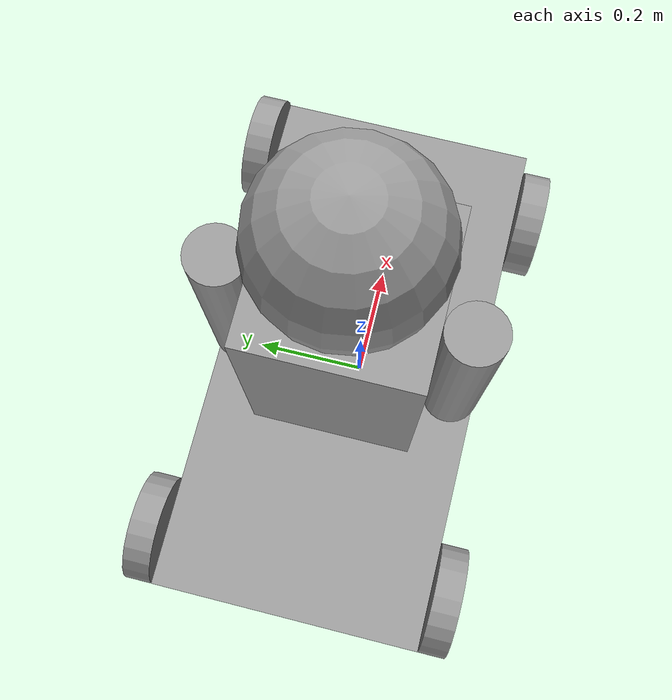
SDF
<?xml version='1.0'?>
<sdf version='1.6'>
  <model name='HumanoidRobot'>
    <link name='link_1'>
      <inertial>
        <mass>1</mass>
        <inertia>
          <ixx>0.166667</ixx>
          <ixy>0</ixy>
          <ixz>0</ixz>
          <iyy>0.166667</iyy>
          <iyz>0</iyz>
          <izz>0.166667</izz>
        </inertia>
        <pose frame=''>0 0 0 0 -0 0</pose>
      </inertial>
      <pose frame=''>0.002333 0.021111 0.035546 0 -0 0</pose>
      <gravity>1</gravity>
      <self_collide>0</self_collide>
      <kinematic>0</kinematic>
      <enable_wind>0</enable_wind>
      <visual name='visual'>
        <pose frame=''>0 0 0 0 -0 0</pose>
        <geometry>
          <box>
            <size>1 0.5 0.02</size>
          </box>
        </geometry>
        <material>
          <lighting>1</lighting>
          <script>
            <uri>file://media/materials/scripts/gazebo.material</uri>
            <name>Gazebo/Grey</name>
          </script>
          <shader type='vertex'>
            <normal_map>__default__</normal_map>
          </shader>
          <ambient>0.3 0.3 0.3 1</ambient>
          <diffuse>0.7 0.7 0.7 1</diffuse>
          <specular>0.01 0.01 0.01 1</specular>
          <emissive>0 0 0 1</emissive>
        </material>
        <transparency>0</transparency>
        <cast_shadows>1</cast_shadows>
      </visual>
      <collision name='collision'>
        <laser_retro>0</laser_retro>
        <max_contacts>10</max_contacts>
        <pose frame=''>0 0 0 0 -0 0</pose>
        <geometry>
          <box>
            <size>1 0.5 0.02</size>
          </box>
        </geometry>
        <surface>
          <friction>
            <ode>
              <mu>1</mu>
              <mu2>1</mu2>
              <fdir1>0 0 0</fdir1>
              <slip1>0</slip1>
              <slip2>0</slip2>
            </ode>
            <torsional>
              <coefficient>1</coefficient>
              <patch_radius>0</patch_radius>
              <surface_radius>0</surface_radius>
              <use_patch_radius>1</use_patch_radius>
              <ode>
                <slip>0</slip>
              </ode>
            </torsional>
          </friction>
          <bounce>
            <restitution_coefficient>0</restitution_coefficient>
            <threshold>1e+06</threshold>
          </bounce>
          <contact>
            <collide_without_contact>0</collide_without_contact>
            <collide_without_contact_bitmask>1</collide_without_contact_bitmask>
            <collide_bitmask>1</collide_bitmask>
            <ode>
              <soft_cfm>0</soft_cfm>
              <soft_erp>0.2</soft_erp>
              <kp>1e+13</kp>
              <kd>1</kd>
              <max_vel>0.01</max_vel>
              <min_depth>0</min_depth>
            </ode>
            <bullet>
              <split_impulse>1</split_impulse>
              <split_impulse_penetration_threshold>-0.01</split_impulse_penetration_threshold>
              <soft_cfm>0</soft_cfm>
              <soft_erp>0.2</soft_erp>
              <kp>1e+13</kp>
              <kd>1</kd>
            </bullet>
          </contact>
        </surface>
      </collision>
    </link>
    <link name='link_2'>
      <inertial>
        <mass>1</mass>
        <inertia>
          <ixx>0.145833</ixx>
          <ixy>0</ixy>
          <ixz>0</ixz>
          <iyy>0.145833</iyy>
          <iyz>0</iyz>
          <izz>0.125</izz>
        </inertia>
        <pose frame=''>0 0 0 0 -0 0</pose>
      </inertial>
      <pose frame=''>0.362333 -0.254 0.035434 1.57 -0 0</pose>
      <gravity>1</gravity>
      <self_collide>0</self_collide>
      <kinematic>0</kinematic>
      <enable_wind>0</enable_wind>
      <visual name='visual'>
        <pose frame=''>0 0 0 0 -0 0</pose>
        <geometry>
          <cylinder>
            <radius>0.1</radius>
            <length>0.05</length>
          </cylinder>
        </geometry>
        <material>
          <lighting>1</lighting>
          <script>
            <uri>file://media/materials/scripts/gazebo.material</uri>
            <name>Gazebo/Grey</name>
          </script>
          <shader type='vertex'>
            <normal_map>__default__</normal_map>
          </shader>
          <ambient>0.3 0.3 0.3 1</ambient>
          <diffuse>0.7 0.7 0.7 1</diffuse>
          <specular>0.01 0.01 0.01 1</specular>
          <emissive>0 0 0 1</emissive>
        </material>
        <transparency>0</transparency>
        <cast_shadows>1</cast_shadows>
      </visual>
      <collision name='collision'>
        <laser_retro>0</laser_retro>
        <max_contacts>10</max_contacts>
        <pose frame=''>0 0 0 0 -0 0</pose>
        <geometry>
          <cylinder>
            <radius>0.1</radius>
            <length>0.05</length>
          </cylinder>
        </geometry>
        <surface>
          <friction>
            <ode>
              <mu>1</mu>
              <mu2>1</mu2>
              <fdir1>0 0 0</fdir1>
              <slip1>0</slip1>
              <slip2>0</slip2>
            </ode>
            <torsional>
              <coefficient>1</coefficient>
              <patch_radius>0</patch_radius>
              <surface_radius>0</surface_radius>
              <use_patch_radius>1</use_patch_radius>
              <ode>
                <slip>0</slip>
              </ode>
            </torsional>
          </friction>
          <bounce>
            <restitution_coefficient>0</restitution_coefficient>
            <threshold>1e+06</threshold>
          </bounce>
          <contact>
            <collide_without_contact>0</collide_without_contact>
            <collide_without_contact_bitmask>1</collide_without_contact_bitmask>
            <collide_bitmask>1</collide_bitmask>
            <ode>
              <soft_cfm>0</soft_cfm>
              <soft_erp>0.2</soft_erp>
              <kp>1e+13</kp>
              <kd>1</kd>
              <max_vel>0.01</max_vel>
              <min_depth>0</min_depth>
            </ode>
            <bullet>
              <split_impulse>1</split_impulse>
              <split_impulse_penetration_threshold>-0.01</split_impulse_penetration_threshold>
              <soft_cfm>0</soft_cfm>
              <soft_erp>0.2</soft_erp>
              <kp>1e+13</kp>
              <kd>1</kd>
            </bullet>
          </contact>
        </surface>
      </collision>
    </link>
    <link name='link_2_clone'>
      <inertial>
        <mass>1</mass>
        <inertia>
          <ixx>0.145833</ixx>
          <ixy>0</ixy>
          <ixz>0</ixz>
          <iyy>0.145833</iyy>
          <iyz>0</iyz>
          <izz>0.125</izz>
        </inertia>
        <pose frame=''>0 0 0 0 -0 0</pose>
      </inertial>
      <pose frame=''>-0.397667 -0.253969 0.035546 1.57 -0 0</pose>
      <gravity>1</gravity>
      <self_collide>0</self_collide>
      <kinematic>0</kinematic>
      <enable_wind>0</enable_wind>
      <visual name='visual'>
        <pose frame=''>0 0 0 0 -0 0</pose>
        <geometry>
          <cylinder>
            <radius>0.1</radius>
            <length>0.05</length>
          </cylinder>
        </geometry>
        <material>
          <lighting>1</lighting>
          <script>
            <uri>file://media/materials/scripts/gazebo.material</uri>
            <name>Gazebo/Grey</name>
          </script>
          <shader type='vertex'>
            <normal_map>__default__</normal_map>
          </shader>
          <ambient>0.3 0.3 0.3 1</ambient>
          <diffuse>0.7 0.7 0.7 1</diffuse>
          <specular>0.01 0.01 0.01 1</specular>
          <emissive>0 0 0 1</emissive>
        </material>
        <transparency>0</transparency>
        <cast_shadows>1</cast_shadows>
      </visual>
      <collision name='collision'>
        <laser_retro>0</laser_retro>
        <max_contacts>10</max_contacts>
        <pose frame=''>0 0 0 0 -0 0</pose>
        <geometry>
          <cylinder>
            <radius>0.1</radius>
            <length>0.05</length>
          </cylinder>
        </geometry>
        <surface>
          <friction>
            <ode>
              <mu>1</mu>
              <mu2>1</mu2>
              <fdir1>0 0 0</fdir1>
              <slip1>0</slip1>
              <slip2>0</slip2>
            </ode>
            <torsional>
              <coefficient>1</coefficient>
              <patch_radius>0</patch_radius>
              <surface_radius>0</surface_radius>
              <use_patch_radius>1</use_patch_radius>
              <ode>
                <slip>0</slip>
              </ode>
            </torsional>
          </friction>
          <bounce>
            <restitution_coefficient>0</restitution_coefficient>
            <threshold>1e+06</threshold>
          </bounce>
          <contact>
            <collide_without_contact>0</collide_without_contact>
            <collide_without_contact_bitmask>1</collide_without_contact_bitmask>
            <collide_bitmask>1</collide_bitmask>
            <ode>
              <soft_cfm>0</soft_cfm>
              <soft_erp>0.2</soft_erp>
              <kp>1e+13</kp>
              <kd>1</kd>
              <max_vel>0.01</max_vel>
              <min_depth>0</min_depth>
            </ode>
            <bullet>
              <split_impulse>1</split_impulse>
              <split_impulse_penetration_threshold>-0.01</split_impulse_penetration_threshold>
              <soft_cfm>0</soft_cfm>
              <soft_erp>0.2</soft_erp>
              <kp>1e+13</kp>
              <kd>1</kd>
            </bullet>
          </contact>
        </surface>
      </collision>
    </link>
    <link name='link_2_clone_0'>
      <inertial>
        <mass>1</mass>
        <inertia>
          <ixx>0.145833</ixx>
          <ixy>0</ixy>
          <ixz>0</ixz>
          <iyy>0.145833</iyy>
          <iyz>0</iyz>
          <izz>0.125</izz>
        </inertia>
        <pose frame=''>0 0 0 0 -0 0</pose>
      </inertial>
      <pose frame=''>-0.397667 0.296191 0.035546 1.57 -0 0</pose>
      <gravity>1</gravity>
      <self_collide>0</self_collide>
      <kinematic>0</kinematic>
      <enable_wind>0</enable_wind>
      <visual name='visual'>
        <pose frame=''>0 0 0 0 -0 0</pose>
        <geometry>
          <cylinder>
            <radius>0.1</radius>
            <length>0.05</length>
          </cylinder>
        </geometry>
        <material>
          <lighting>1</lighting>
          <script>
            <uri>file://media/materials/scripts/gazebo.material</uri>
            <name>Gazebo/Grey</name>
          </script>
          <shader type='vertex'>
            <normal_map>__default__</normal_map>
          </shader>
          <ambient>0.3 0.3 0.3 1</ambient>
          <diffuse>0.7 0.7 0.7 1</diffuse>
          <specular>0.01 0.01 0.01 1</specular>
          <emissive>0 0 0 1</emissive>
        </material>
        <transparency>0</transparency>
        <cast_shadows>1</cast_shadows>
      </visual>
      <collision name='collision'>
        <laser_retro>0</laser_retro>
        <max_contacts>10</max_contacts>
        <pose frame=''>0 0 0 0 -0 0</pose>
        <geometry>
          <cylinder>
            <radius>0.1</radius>
            <length>0.05</length>
          </cylinder>
        </geometry>
        <surface>
          <friction>
            <ode>
              <mu>1</mu>
              <mu2>1</mu2>
              <fdir1>0 0 0</fdir1>
              <slip1>0</slip1>
              <slip2>0</slip2>
            </ode>
            <torsional>
              <coefficient>1</coefficient>
              <patch_radius>0</patch_radius>
              <surface_radius>0</surface_radius>
              <use_patch_radius>1</use_patch_radius>
              <ode>
                <slip>0</slip>
              </ode>
            </torsional>
          </friction>
          <bounce>
            <restitution_coefficient>0</restitution_coefficient>
            <threshold>1e+06</threshold>
          </bounce>
          <contact>
            <collide_without_contact>0</collide_without_contact>
            <collide_without_contact_bitmask>1</collide_without_contact_bitmask>
            <collide_bitmask>1</collide_bitmask>
            <ode>
              <soft_cfm>0</soft_cfm>
              <soft_erp>0.2</soft_erp>
              <kp>1e+13</kp>
              <kd>1</kd>
              <max_vel>0.01</max_vel>
              <min_depth>0</min_depth>
            </ode>
            <bullet>
              <split_impulse>1</split_impulse>
              <split_impulse_penetration_threshold>-0.01</split_impulse_penetration_threshold>
              <soft_cfm>0</soft_cfm>
              <soft_erp>0.2</soft_erp>
              <kp>1e+13</kp>
              <kd>1</kd>
            </bullet>
          </contact>
        </surface>
      </collision>
    </link>
    <link name='link_2_clone_1'>
      <inertial>
        <mass>1</mass>
        <inertia>
          <ixx>0.145833</ixx>
          <ixy>0</ixy>
          <ixz>0</ixz>
          <iyy>0.145833</iyy>
          <iyz>0</iyz>
          <izz>0.125</izz>
        </inertia>
        <pose frame=''>0 0 0 0 -0 0</pose>
      </inertial>
      <pose frame=''>0.402333 0.296191 0.035546 1.57 -0 0</pose>
      <gravity>1</gravity>
      <self_collide>0</self_collide>
      <kinematic>0</kinematic>
      <enable_wind>0</enable_wind>
      <visual name='visual'>
        <pose frame=''>0 0 0 0 -0 0</pose>
        <geometry>
          <cylinder>
            <radius>0.1</radius>
            <length>0.05</length>
          </cylinder>
        </geometry>
        <material>
          <lighting>1</lighting>
          <script>
            <uri>file://media/materials/scripts/gazebo.material</uri>
            <name>Gazebo/Grey</name>
          </script>
          <shader type='vertex'>
            <normal_map>__default__</normal_map>
          </shader>
          <ambient>0.3 0.3 0.3 1</ambient>
          <diffuse>0.7 0.7 0.7 1</diffuse>
          <specular>0.01 0.01 0.01 1</specular>
          <emissive>0 0 0 1</emissive>
        </material>
        <transparency>0</transparency>
        <cast_shadows>1</cast_shadows>
      </visual>
      <collision name='collision'>
        <laser_retro>0</laser_retro>
        <max_contacts>10</max_contacts>
        <pose frame=''>0 0 0 0 -0 0</pose>
        <geometry>
          <cylinder>
            <radius>0.1</radius>
            <length>0.05</length>
          </cylinder>
        </geometry>
        <surface>
          <friction>
            <ode>
              <mu>1</mu>
              <mu2>1</mu2>
              <fdir1>0 0 0</fdir1>
              <slip1>0</slip1>
              <slip2>0</slip2>
            </ode>
            <torsional>
              <coefficient>1</coefficient>
              <patch_radius>0</patch_radius>
              <surface_radius>0</surface_radius>
              <use_patch_radius>1</use_patch_radius>
              <ode>
                <slip>0</slip>
              </ode>
            </torsional>
          </friction>
          <bounce>
            <restitution_coefficient>0</restitution_coefficient>
            <threshold>1e+06</threshold>
          </bounce>
          <contact>
            <collide_without_contact>0</collide_without_contact>
            <collide_without_contact_bitmask>1</collide_without_contact_bitmask>
            <collide_bitmask>1</collide_bitmask>
            <ode>
              <soft_cfm>0</soft_cfm>
              <soft_erp>0.2</soft_erp>
              <kp>1e+13</kp>
              <kd>1</kd>
              <max_vel>0.01</max_vel>
              <min_depth>0</min_depth>
            </ode>
            <bullet>
              <split_impulse>1</split_impulse>
              <split_impulse_penetration_threshold>-0.01</split_impulse_penetration_threshold>
              <soft_cfm>0</soft_cfm>
              <soft_erp>0.2</soft_erp>
              <kp>1e+13</kp>
              <kd>1</kd>
            </bullet>
          </contact>
        </surface>
      </collision>
    </link>
    <link name='link_4'>
      <inertial>
        <mass>1</mass>
        <inertia>
          <ixx>0.166667</ixx>
          <ixy>0</ixy>
          <ixz>0</ixz>
          <iyy>0.166667</iyy>
          <iyz>0</iyz>
          <izz>0.166667</izz>
        </inertia>
        <pose frame=''>0 0 0 0 -0 0</pose>
      </inertial>
      <pose frame=''>0.002333 0.021105 0.275546 0 -0 0</pose>
      <gravity>1</gravity>
      <self_collide>0</self_collide>
      <kinematic>0</kinematic>
      <enable_wind>0</enable_wind>
      <visual name='visual'>
        <pose frame=''>0 0 0 0 -0 0</pose>
        <geometry>
          <box>
            <size>0.3 0.3 0.5</size>
          </box>
        </geometry>
        <material>
          <lighting>1</lighting>
          <script>
            <uri>file://media/materials/scripts/gazebo.material</uri>
            <name>Gazebo/Grey</name>
          </script>
          <shader type='vertex'>
            <normal_map>__default__</normal_map>
          </shader>
          <ambient>0.3 0.3 0.3 1</ambient>
          <diffuse>0.7 0.7 0.7 1</diffuse>
          <specular>0.01 0.01 0.01 1</specular>
          <emissive>0 0 0 1</emissive>
        </material>
        <transparency>0</transparency>
        <cast_shadows>1</cast_shadows>
      </visual>
      <collision name='collision'>
        <laser_retro>0</laser_retro>
        <max_contacts>10</max_contacts>
        <pose frame=''>0 0 0 0 -0 0</pose>
        <geometry>
          <box>
            <size>0.3 0.3 0.5</size>
          </box>
        </geometry>
        <surface>
          <friction>
            <ode>
              <mu>1</mu>
              <mu2>1</mu2>
              <fdir1>0 0 0</fdir1>
              <slip1>0</slip1>
              <slip2>0</slip2>
            </ode>
            <torsional>
              <coefficient>1</coefficient>
              <patch_radius>0</patch_radius>
              <surface_radius>0</surface_radius>
              <use_patch_radius>1</use_patch_radius>
              <ode>
                <slip>0</slip>
              </ode>
            </torsional>
          </friction>
          <bounce>
            <restitution_coefficient>0</restitution_coefficient>
            <threshold>1e+06</threshold>
          </bounce>
          <contact>
            <collide_without_contact>0</collide_without_contact>
            <collide_without_contact_bitmask>1</collide_without_contact_bitmask>
            <collide_bitmask>1</collide_bitmask>
            <ode>
              <soft_cfm>0</soft_cfm>
              <soft_erp>0.2</soft_erp>
              <kp>1e+13</kp>
              <kd>1</kd>
              <max_vel>0.01</max_vel>
              <min_depth>0</min_depth>
            </ode>
            <bullet>
              <split_impulse>1</split_impulse>
              <split_impulse_penetration_threshold>-0.01</split_impulse_penetration_threshold>
              <soft_cfm>0</soft_cfm>
              <soft_erp>0.2</soft_erp>
              <kp>1e+13</kp>
              <kd>1</kd>
            </bullet>
          </contact>
        </surface>
      </collision>
    </link>
    <link name='link_5'>
      <inertial>
        <mass>1</mass>
        <inertia>
          <ixx>0.1</ixx>
          <ixy>0</ixy>
          <ixz>0</ixz>
          <iyy>0.1</iyy>
          <iyz>0</iyz>
          <izz>0.1</izz>
        </inertia>
        <pose frame=''>0 0 0 0 -0 0</pose>
      </inertial>
      <pose frame=''>-0.005667 0.021105 0.675546 0 -0 0</pose>
      <gravity>1</gravity>
      <self_collide>0</self_collide>
      <kinematic>0</kinematic>
      <enable_wind>0</enable_wind>
      <visual name='visual'>
        <pose frame=''>0 0 0 0 -0 0</pose>
        <geometry>
          <sphere>
            <radius>0.15</radius>
          </sphere>
        </geometry>
        <material>
          <lighting>1</lighting>
          <script>
            <uri>file://media/materials/scripts/gazebo.material</uri>
            <name>Gazebo/Grey</name>
          </script>
          <shader type='vertex'>
            <normal_map>__default__</normal_map>
          </shader>
          <ambient>0.3 0.3 0.3 1</ambient>
          <diffuse>0.7 0.7 0.7 1</diffuse>
          <specular>0.01 0.01 0.01 1</specular>
          <emissive>0 0 0 1</emissive>
        </material>
        <transparency>0</transparency>
        <cast_shadows>1</cast_shadows>
      </visual>
      <collision name='collision'>
        <laser_retro>0</laser_retro>
        <max_contacts>10</max_contacts>
        <pose frame=''>0 0 0 0 -0 0</pose>
        <geometry>
          <sphere>
            <radius>0.15</radius>
          </sphere>
        </geometry>
        <surface>
          <friction>
            <ode>
              <mu>1</mu>
              <mu2>1</mu2>
              <fdir1>0 0 0</fdir1>
              <slip1>0</slip1>
              <slip2>0</slip2>
            </ode>
            <torsional>
              <coefficient>1</coefficient>
              <patch_radius>0</patch_radius>
              <surface_radius>0</surface_radius>
              <use_patch_radius>1</use_patch_radius>
              <ode>
                <slip>0</slip>
              </ode>
            </torsional>
          </friction>
          <bounce>
            <restitution_coefficient>0</restitution_coefficient>
            <threshold>1e+06</threshold>
          </bounce>
          <contact>
            <collide_without_contact>0</collide_without_contact>
            <collide_without_contact_bitmask>1</collide_without_contact_bitmask>
            <collide_bitmask>1</collide_bitmask>
            <ode>
              <soft_cfm>0</soft_cfm>
              <soft_erp>0.2</soft_erp>
              <kp>1e+13</kp>
              <kd>1</kd>
              <max_vel>0.01</max_vel>
              <min_depth>0</min_depth>
            </ode>
            <bullet>
              <split_impulse>1</split_impulse>
              <split_impulse_penetration_threshold>-0.01</split_impulse_penetration_threshold>
              <soft_cfm>0</soft_cfm>
              <soft_erp>0.2</soft_erp>
              <kp>1e+13</kp>
              <kd>1</kd>
            </bullet>
          </contact>
        </surface>
      </collision>
    </link>
    <link name='link_6'>
      <inertial>
        <mass>1</mass>
        <inertia>
          <ixx>0.145833</ixx>
          <ixy>0</ixy>
          <ixz>0</ixz>
          <iyy>0.145833</iyy>
          <iyz>0</iyz>
          <izz>0.125</izz>
        </inertia>
        <pose frame=''>0 0 0 0 -0 0</pose>
      </inertial>
      <pose frame=''>-0.042667 -0.178895 0.335546 0 -0 0</pose>
      <gravity>1</gravity>
      <self_collide>0</self_collide>
      <kinematic>0</kinematic>
      <enable_wind>0</enable_wind>
      <visual name='visual'>
        <pose frame=''>0 0 0 0 -0 0</pose>
        <geometry>
          <cylinder>
            <radius>0.05</radius>
            <length>0.4</length>
          </cylinder>
        </geometry>
        <material>
          <lighting>1</lighting>
          <script>
            <uri>file://media/materials/scripts/gazebo.material</uri>
            <name>Gazebo/Grey</name>
          </script>
          <shader type='vertex'>
            <normal_map>__default__</normal_map>
          </shader>
          <ambient>0.3 0.3 0.3 1</ambient>
          <diffuse>0.7 0.7 0.7 1</diffuse>
          <specular>0.01 0.01 0.01 1</specular>
          <emissive>0 0 0 1</emissive>
        </material>
        <transparency>0</transparency>
        <cast_shadows>1</cast_shadows>
      </visual>
      <collision name='collision'>
        <laser_retro>0</laser_retro>
        <max_contacts>10</max_contacts>
        <pose frame=''>0 0 0 0 -0 0</pose>
        <geometry>
          <cylinder>
            <radius>0.05</radius>
            <length>0.4</length>
          </cylinder>
        </geometry>
        <surface>
          <friction>
            <ode>
              <mu>1</mu>
              <mu2>1</mu2>
              <fdir1>0 0 0</fdir1>
              <slip1>0</slip1>
              <slip2>0</slip2>
            </ode>
            <torsional>
              <coefficient>1</coefficient>
              <patch_radius>0</patch_radius>
              <surface_radius>0</surface_radius>
              <use_patch_radius>1</use_patch_radius>
              <ode>
                <slip>0</slip>
              </ode>
            </torsional>
          </friction>
          <bounce>
            <restitution_coefficient>0</restitution_coefficient>
            <threshold>1e+06</threshold>
          </bounce>
          <contact>
            <collide_without_contact>0</collide_without_contact>
            <collide_without_contact_bitmask>1</collide_without_contact_bitmask>
            <collide_bitmask>1</collide_bitmask>
            <ode>
              <soft_cfm>0</soft_cfm>
              <soft_erp>0.2</soft_erp>
              <kp>1e+13</kp>
              <kd>1</kd>
              <max_vel>0.01</max_vel>
              <min_depth>0</min_depth>
            </ode>
            <bullet>
              <split_impulse>1</split_impulse>
              <split_impulse_penetration_threshold>-0.01</split_impulse_penetration_threshold>
              <soft_cfm>0</soft_cfm>
              <soft_erp>0.2</soft_erp>
              <kp>1e+13</kp>
              <kd>1</kd>
            </bullet>
          </contact>
        </surface>
      </collision>
    </link>
    <link name='link_6_clone'>
      <inertial>
        <mass>1</mass>
        <inertia>
          <ixx>0.145833</ixx>
          <ixy>0</ixy>
          <ixz>0</ixz>
          <iyy>0.145833</iyy>
          <iyz>0</iyz>
          <izz>0.125</izz>
        </inertia>
        <pose frame=''>0 0 0 0 -0 0</pose>
      </inertial>
      <pose frame=''>-0.017667 0.221105 0.335546 0 -0 0</pose>
      <gravity>1</gravity>
      <self_collide>0</self_collide>
      <kinematic>0</kinematic>
      <enable_wind>0</enable_wind>
      <visual name='visual'>
        <pose frame=''>0 0 0 0 -0 0</pose>
        <geometry>
          <cylinder>
            <radius>0.05</radius>
            <length>0.4</length>
          </cylinder>
        </geometry>
        <material>
          <lighting>1</lighting>
          <script>
            <uri>file://media/materials/scripts/gazebo.material</uri>
            <name>Gazebo/Grey</name>
          </script>
          <shader type='vertex'>
            <normal_map>__default__</normal_map>
          </shader>
          <ambient>0.3 0.3 0.3 1</ambient>
          <diffuse>0.7 0.7 0.7 1</diffuse>
          <specular>0.01 0.01 0.01 1</specular>
          <emissive>0 0 0 1</emissive>
        </material>
        <transparency>0</transparency>
        <cast_shadows>1</cast_shadows>
      </visual>
      <collision name='collision'>
        <laser_retro>0</laser_retro>
        <max_contacts>10</max_contacts>
        <pose frame=''>0 0 0 0 -0 0</pose>
        <geometry>
          <cylinder>
            <radius>0.05</radius>
            <length>0.4</length>
          </cylinder>
        </geometry>
        <surface>
          <friction>
            <ode>
              <mu>1</mu>
              <mu2>1</mu2>
              <fdir1>0 0 0</fdir1>
              <slip1>0</slip1>
              <slip2>0</slip2>
            </ode>
            <torsional>
              <coefficient>1</coefficient>
              <patch_radius>0</patch_radius>
              <surface_radius>0</surface_radius>
              <use_patch_radius>1</use_patch_radius>
              <ode>
                <slip>0</slip>
              </ode>
            </torsional>
          </friction>
          <bounce>
            <restitution_coefficient>0</restitution_coefficient>
            <threshold>1e+06</threshold>
          </bounce>
          <contact>
            <collide_without_contact>0</collide_without_contact>
            <collide_without_contact_bitmask>1</collide_without_contact_bitmask>
            <collide_bitmask>1</collide_bitmask>
            <ode>
              <soft_cfm>0</soft_cfm>
              <soft_erp>0.2</soft_erp>
              <kp>1e+13</kp>
              <kd>1</kd>
              <max_vel>0.01</max_vel>
              <min_depth>0</min_depth>
            </ode>
            <bullet>
              <split_impulse>1</split_impulse>
              <split_impulse_penetration_threshold>-0.01</split_impulse_penetration_threshold>
              <soft_cfm>0</soft_cfm>
              <soft_erp>0.2</soft_erp>
              <kp>1e+13</kp>
              <kd>1</kd>
            </bullet>
          </contact>
        </surface>
      </collision>
    </link>
    <joint name='link_1_JOINT_0' type='revolute'>
      <parent>link_1</parent>
      <child>link_2</child>
      <pose frame=''>0 0 0 0 -0 0</pose>
      <axis>
        <xyz>0 0 1</xyz>
        <use_parent_model_frame>0</use_parent_model_frame>
        <limit>
          <lower>-1.79769e+308</lower>
          <upper>1.79769e+308</upper>
          <effort>-1</effort>
          <velocity>-1</velocity>
        </limit>
        <dynamics>
          <spring_reference>0</spring_reference>
          <spring_stiffness>0</spring_stiffness>
          <damping>0</damping>
        </dynamics>
      </axis>
      <physics>
        <ode>
          <limit>
            <cfm>0</cfm>
            <erp>0.2</erp>
          </limit>
          <suspension>
            <cfm>0</cfm>
            <erp>0.2</erp>
          </suspension>
        </ode>
      </physics>
    </joint>
    <joint name='link_1_JOINT_1' type='revolute'>
      <parent>link_1</parent>
      <child>link_2_clone</child>
      <pose frame=''>0 0 0 0 -0 0</pose>
      <axis>
        <xyz>0 0 1</xyz>
        <use_parent_model_frame>0</use_parent_model_frame>
        <limit>
          <lower>-1.79769e+308</lower>
          <upper>1.79769e+308</upper>
          <effort>-1</effort>
          <velocity>-1</velocity>
        </limit>
        <dynamics>
          <spring_reference>0</spring_reference>
          <spring_stiffness>0</spring_stiffness>
          <damping>0</damping>
        </dynamics>
      </axis>
      <physics>
        <ode>
          <limit>
            <cfm>0</cfm>
            <erp>0.2</erp>
          </limit>
          <suspension>
            <cfm>0</cfm>
            <erp>0.2</erp>
          </suspension>
        </ode>
      </physics>
    </joint>
    <joint name='link_1_JOINT_2' type='revolute'>
      <parent>link_1</parent>
      <child>link_2_clone_0</child>
      <pose frame=''>0 0 0 0 -0 0</pose>
      <axis>
        <xyz>0 0 1</xyz>
        <use_parent_model_frame>0</use_parent_model_frame>
        <limit>
          <lower>-1.79769e+308</lower>
          <upper>1.79769e+308</upper>
          <effort>-1</effort>
          <velocity>-1</velocity>
        </limit>
        <dynamics>
          <spring_reference>0</spring_reference>
          <spring_stiffness>0</spring_stiffness>
          <damping>0</damping>
        </dynamics>
      </axis>
      <physics>
        <ode>
          <limit>
            <cfm>0</cfm>
            <erp>0.2</erp>
          </limit>
          <suspension>
            <cfm>0</cfm>
            <erp>0.2</erp>
          </suspension>
        </ode>
      </physics>
    </joint>
    <joint name='link_1_JOINT_3' type='revolute'>
      <parent>link_1</parent>
      <child>link_2_clone_1</child>
      <pose frame=''>0 0 0 0 -0 0</pose>
      <axis>
        <xyz>0 0 1</xyz>
        <use_parent_model_frame>0</use_parent_model_frame>
        <limit>
          <lower>-1.79769e+308</lower>
          <upper>1.79769e+308</upper>
          <effort>-1</effort>
          <velocity>-1</velocity>
        </limit>
        <dynamics>
          <spring_reference>0</spring_reference>
          <spring_stiffness>0</spring_stiffness>
          <damping>0</damping>
        </dynamics>
      </axis>
      <physics>
        <ode>
          <limit>
            <cfm>0</cfm>
            <erp>0.2</erp>
          </limit>
          <suspension>
            <cfm>0</cfm>
            <erp>0.2</erp>
          </suspension>
        </ode>
      </physics>
    </joint>
    <joint name='link_1_JOINT_4' type='revolute'>
      <parent>link_1</parent>
      <child>link_4</child>
      <pose frame=''>0 0 0 0 -0 0</pose>
      <axis>
        <xyz>0 0 1</xyz>
        <use_parent_model_frame>0</use_parent_model_frame>
        <limit>
          <lower>-1.79769e+308</lower>
          <upper>1.79769e+308</upper>
          <effort>-1</effort>
          <velocity>-1</velocity>
        </limit>
        <dynamics>
          <spring_reference>0</spring_reference>
          <spring_stiffness>0</spring_stiffness>
          <damping>0</damping>
        </dynamics>
      </axis>
      <physics>
        <ode>
          <limit>
            <cfm>0</cfm>
            <erp>0.2</erp>
          </limit>
          <suspension>
            <cfm>0</cfm>
            <erp>0.2</erp>
          </suspension>
        </ode>
      </physics>
    </joint>
    <joint name='link_4_JOINT_5' type='revolute'>
      <parent>link_4</parent>
      <child>link_5</child>
      <pose frame=''>0 0 0 0 -0 0</pose>
      <axis>
        <xyz>0 0 1</xyz>
        <use_parent_model_frame>0</use_parent_model_frame>
        <limit>
          <lower>-1.79769e+308</lower>
          <upper>1.79769e+308</upper>
          <effort>-1</effort>
          <velocity>-1</velocity>
        </limit>
        <dynamics>
          <spring_reference>0</spring_reference>
          <spring_stiffness>0</spring_stiffness>
          <damping>0</damping>
        </dynamics>
      </axis>
      <physics>
        <ode>
          <limit>
            <cfm>0</cfm>
            <erp>0.2</erp>
          </limit>
          <suspension>
            <cfm>0</cfm>
            <erp>0.2</erp>
          </suspension>
        </ode>
      </physics>
    </joint>
    <joint name='link_4_JOINT_6' type='revolute'>
      <parent>link_4</parent>
      <child>link_6</child>
      <pose frame=''>0 0 0 0 -0 0</pose>
      <axis>
        <xyz>0 1 0</xyz>
        <use_parent_model_frame>0</use_parent_model_frame>
        <limit>
          <lower>-1.79769e+308</lower>
          <upper>1.79769e+308</upper>
          <effort>-1</effort>
          <velocity>-1</velocity>
        </limit>
        <dynamics>
          <spring_reference>0</spring_reference>
          <spring_stiffness>0</spring_stiffness>
          <damping>0</damping>
        </dynamics>
      </axis>
      <physics>
        <ode>
          <limit>
            <cfm>0</cfm>
            <erp>0.2</erp>
          </limit>
          <suspension>
            <cfm>0</cfm>
            <erp>0.2</erp>
          </suspension>
        </ode>
      </physics>
    </joint>
    <joint name='link_4_JOINT_7' type='revolute'>
      <parent>link_4</parent>
      <child>link_6_clone</child>
      <pose frame=''>0 0 0 0 -0 0</pose>
      <axis>
        <xyz>0 1 0</xyz>
        <use_parent_model_frame>0</use_parent_model_frame>
        <limit>
          <lower>-1.79769e+308</lower>
          <upper>1.79769e+308</upper>
          <effort>-1</effort>
          <velocity>-1</velocity>
        </limit>
        <dynamics>
          <spring_reference>0</spring_reference>
          <spring_stiffness>0</spring_stiffness>
          <damping>0</damping>
        </dynamics>
      </axis>
      <physics>
        <ode>
          <limit>
            <cfm>0</cfm>
            <erp>0.2</erp>
          </limit>
          <suspension>
            <cfm>0</cfm>
            <erp>0.2</erp>
          </suspension>
        </ode>
      </physics>
    </joint>
    <static>0</static>
    <allow_auto_disable>1</allow_auto_disable>
  </model>
</sdf>
